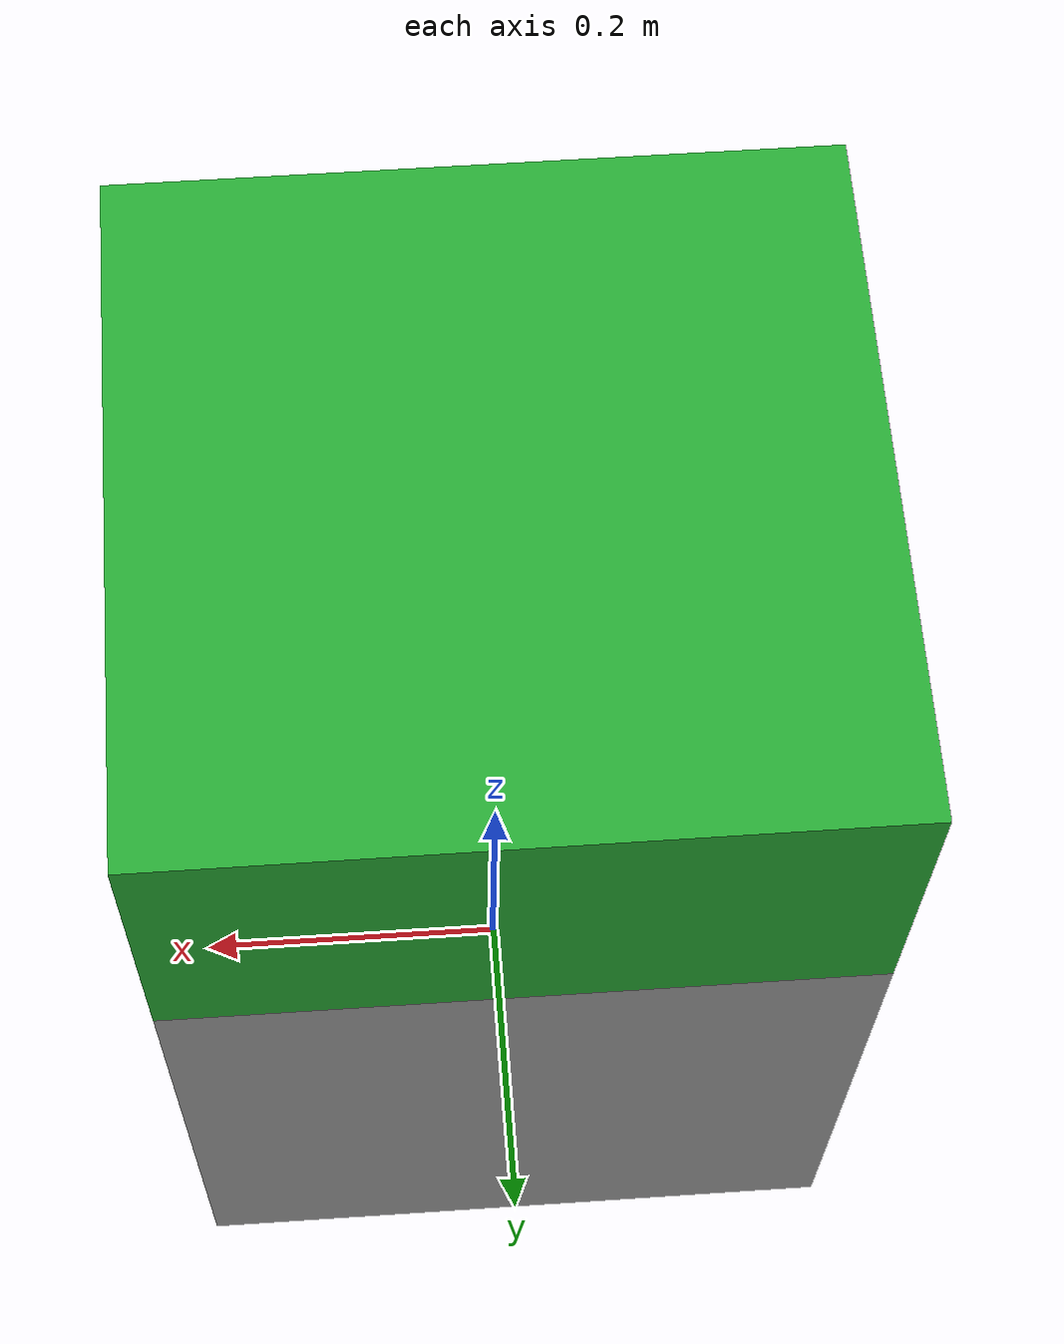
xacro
<?xml version="1.0"?>
<robot name="dummy" xmlns:xacro="http://ros.org/wiki/xacro">
  <xacro:include filename="$(find unitree_hardware)/description/urdf/primitive.urdf.xacro"/>
  <xacro:include filename="$(find unitree_hardware)/description/urdf/material.urdf.xacro"/>
  <xacro:include filename="$(find unitree_hardware)/description/urdf/single_motor.ros2_control.urdf.xacro"/>

  <xacro:make_box_link name="base_link"
                       xyz="0 0 0.2"
                       rpy="0 0 0"
                       mass="1.0"
                       width="0.4"
                       length="0.4"
                       height="0.4"
                       color="grey"/>

  <xacro:make_box_link name="pan_link"
                       xyz="0 0 0.1"
                       rpy="0 0 0"
                       mass="1.0"
                       width="0.4"
                       length="0.4"
                       height="0.2"
                       color="green"/>

  <xacro:make_continuous_joint name="pan_joint"
                               xyz="0 0 0.4"
                               rpy="0 0 0"
                               parent="base_link"
                               child="pan_link"
                               axis="0 0 1"
                               effort="2.0"
                               velocity="3.0"/>

  <xacro:make_single_motor_ros2_control name="single_motor_ros2_control"/>
</robot>

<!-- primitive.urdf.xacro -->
<robot xmlns:xacro="http://wiki.ros.org/xacro">

    <!-- macros to make primitive links & joints -->

    <!-- macro to make a cylinder link -->
    <xacro:macro name="make_cylinder_link"
                 params="name
                         xyz:=^|'0 0 0'
                         rpy:=^|'0 0 0'
                         mass:=^
                         radius:=^
                         length:=^
                         color:=^">
        <link name="${name}">
            <inertial>
                <origin xyz="${xyz}" rpy="${rpy}" />
                <mass value="${mass}" />
                <inertia ixx="${mass * (3 * radius * radius + length * length) / 12}" ixy="0" ixz="0"
                         iyy="${mass * (3 * radius * radius + length * length) / 12}" iyz="0"
                         izz="${mass * radius * radius / 2}" />
            </inertial>
            <visual>
                <origin xyz="${xyz}" rpy="${rpy}" />
                <geometry>
                    <cylinder radius="${radius}" length="${length}" />
                </geometry>
                <material name="${color}"/>
            </visual>
            <collision>
                <origin xyz="${xyz}" rpy="${rpy}" />
                <geometry>
                    <cylinder radius="${radius}" length="${length}" />
                </geometry>
                </collision>
        </link>

    </xacro:macro>

    <!-- macro to make a sphere link -->
    <xacro:macro name="make_sphere_link"
                 params="name
                         xyz:=^|'0 0 0'
                         rpy:=^|'0 0 0'
                         mass:=^
                         radius:=^
                         color:=^">
        <link name="${name}">
            <inertial>
                <origin xyz="${xyz}" rpy="${rpy}" />
                <mass value="${mass}" />
                <inertia ixx="${2 * mass * radius * radius / 5}" ixy="0" ixz="0"
                         iyy="${2 * mass * radius * radius / 5}" iyz="0"
                         izz="${2 * mass * radius * radius / 5}" />
            </inertial>
            <visual>
                <origin xyz="${xyz}" rpy="${rpy}" />
                <geometry>
                    <sphere radius="${radius}" />
                </geometry>
                <material name="${color}"/>
            </visual>
            <collision>
                <origin xyz="${xyz}" rpy="${rpy}" />
                <geometry>
                    <sphere radius="${radius}" />
                </geometry>
            </collision>
        </link>

    </xacro:macro>

    <!-- macro to make a box link -->
    <xacro:macro name="make_box_link"
                 params="name
                         xyz:=^|'0 0 0'
                         rpy:=^|'0 0 0'
                         mass:=^
                         width:=^
                         length:=^
                         height:=^
                         color:=^">
        <link name="${name}">
            <inertial>
                <origin xyz="${xyz}" rpy="${rpy}"/>
                <mass value="${mass}"/>
                <inertia ixx="${mass * (length * length + height * height) / 12}" ixy="0" ixz="0"
                         iyy="${mass * (width * width + height * height) / 12}"   iyz="0"
                         izz="${mass * (width * width + length * length) / 12}" />
            </inertial>
            <visual>
                <origin xyz="${xyz}" rpy="${rpy}"/>
                <geometry>
                    <box size="${width} ${length} ${height}"/>
                </geometry>
                <material name="${color}"/>
            </visual>
            <collision>
                <origin xyz="${xyz}" rpy="${rpy}" />
                <geometry>
                    <box size="${width} ${length} ${height}"/>
                </geometry>
            </collision>
        </link>

    </xacro:macro>

    <!-- macro to make a cube link -->
    <xacro:macro name="make_cube_link"
                 params="name
                         xyz:=^|'0 0 0'
                         rpy:=^|'0 0 0'
                         mass:=^
                         length:=^
                         color:=^">
        <xacro:make_box_link name="${name}"
                             width="${length}"
                             height="${length}" />
    </xacro:macro>

    <!-- macro to make a continuous joint -->
    <xacro:macro name="make_continuous_joint"
                 params="name
                         xyz:=^|'0 0 0'
                         rpy:=^|'0 0 0'
                         parent:=^
                         child:=^
                         axis:=^
                         effort:=^|0
                         velocity:=^|0
                         damping:=^|0
                         friction:=^|0
                         spring:=^|0">
        <joint name="${name}" type="continuous">
            <origin xyz="${xyz}" rpy="${rpy}" />
            <parent link="${parent}" />
            <child link="${child}" />
            <axis xyz="${axis}" />
            <limit effort="${effort}" velocity="${velocity}"/>
            <dynamics damping="${damping}" friction="${friction}" />
        </joint>
        <gazebo reference="${name}">
            <implicitSpringDamper>true</implicitSpringDamper>
            <springStiffness>${spring}</springStiffness>
        </gazebo>
    </xacro:macro>

    <!-- macro to make a fixed joint -->
    <xacro:macro name="make_fixed_joint"
                 params="name
                         xyz:=^|'0 0 0'
                         rpy:=^|'0 0 0'
                         parent:=^
                         child:=^">
        <joint name="${name}" type="fixed">
            <origin xyz="${xyz}" rpy="${rpy}" />
            <parent link="${parent}" />
            <child link="${child}" />
        </joint>
    </xacro:macro>

</robot>
